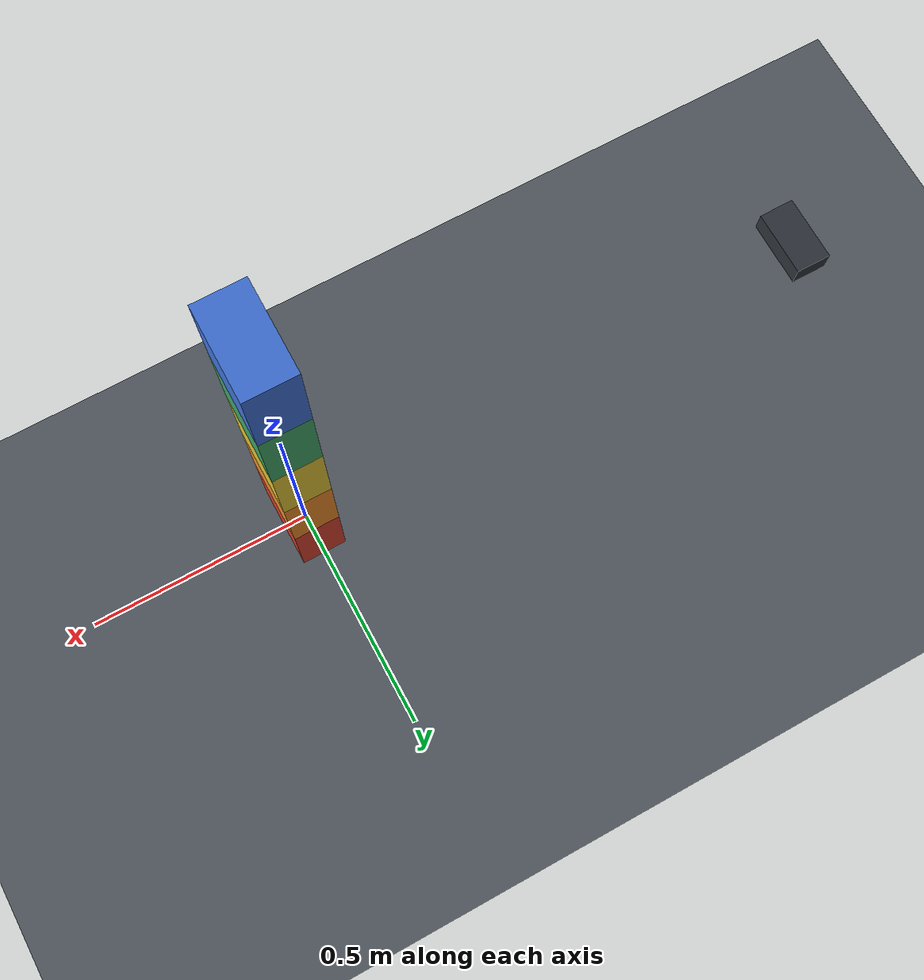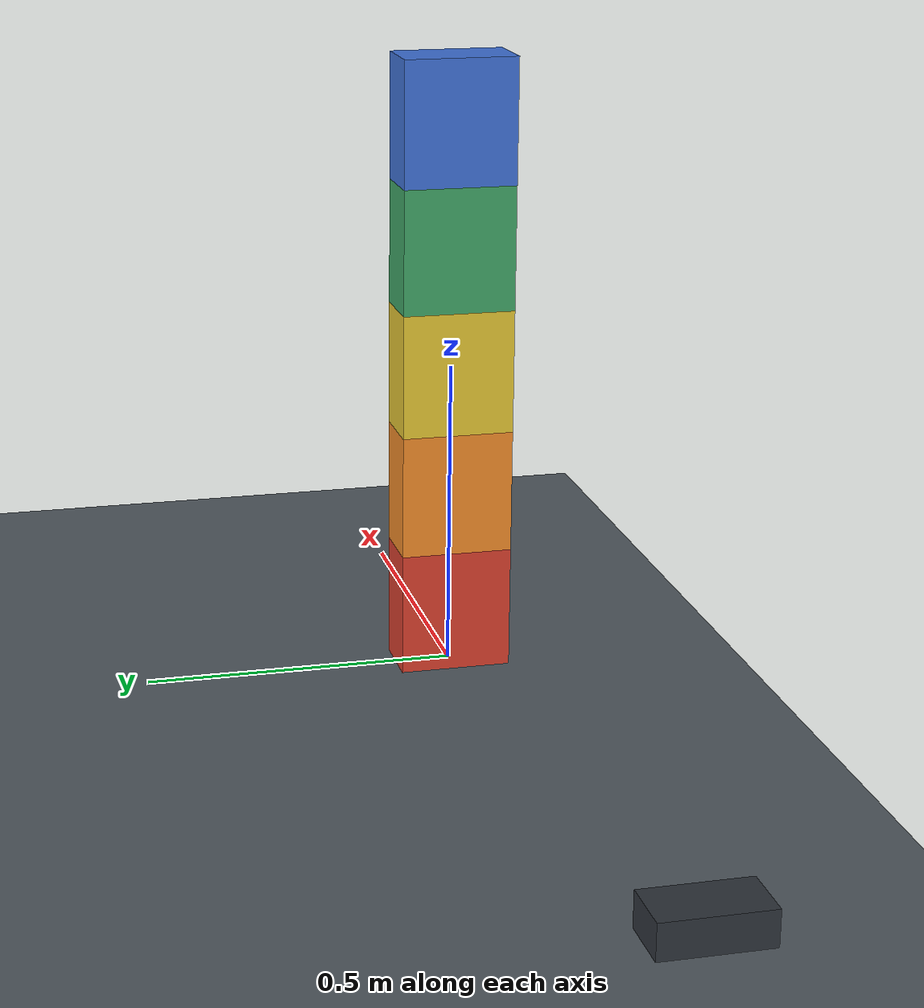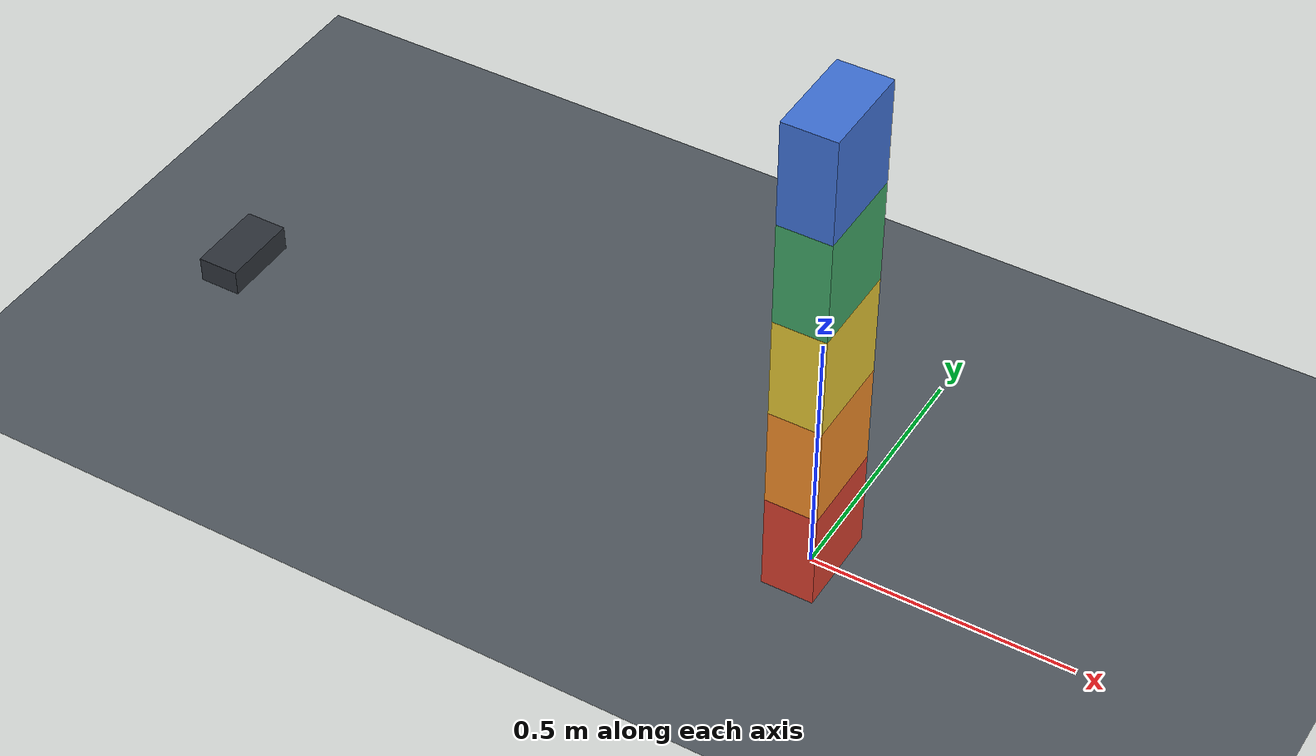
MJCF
<mujoco model="five_block_stack">
  <compiler angle="radian"/>
  <option timestep="0.002" gravity="0 0 -9.81" integrator="implicitfast" solver="Newton" iterations="80" cone="elliptic"/>

  <visual>
    <global azimuth="135" elevation="-20"/>
    <headlight ambient="0.35 0.35 0.35" diffuse="0.7 0.7 0.7" specular="0.2 0.2 0.2"/>
  </visual>

  <worldbody>
    <light name="overhead" pos="-2 -3 4" dir="0.4 0.5 -1" directional="true"/>
    <camera name="overview" pos="2.8 -3.5 2.0" xyaxes="0.781 0.625 0 -0.251 0.314 0.916"/>

    <geom name="floor" type="plane" pos="0 0 0" size="4 4 0.1" priority="1" friction="2.0 0.005 0.0001" solref="0.008 1" solimp="0.95 0.99 0.001" rgba="0.32 0.35 0.38 1"/>

    <body name="block1" pos="0 0 0.10">
      <freejoint name="block1_free"/>
      <geom name="block1_geom" type="box" size="0.05 0.09 0.10" mass="0.5" friction="1.0 0.005 0.0001" solref="0.008 1" solimp="0.95 0.99 0.001" rgba="0.85 0.25 0.18 1"/>
    </body>

    <body name="block2" pos="0 0 0.30">
      <freejoint name="block2_free"/>
      <geom name="block2_geom" type="box" size="0.05 0.09 0.10" mass="0.5" friction="1.0 0.005 0.0001" solref="0.008 1" solimp="0.95 0.99 0.001" rgba="0.95 0.55 0.16 1"/>
    </body>

    <body name="block3" pos="0 0 0.50">
      <freejoint name="block3_free"/>
      <geom name="block3_geom" type="box" size="0.05 0.09 0.10" mass="0.5" friction="1.0 0.005 0.0001" solref="0.008 1" solimp="0.95 0.99 0.001" rgba="0.90 0.78 0.20 1"/>
    </body>

    <body name="block4" pos="0 0 0.70">
      <freejoint name="block4_free"/>
      <geom name="block4_geom" type="box" size="0.05 0.09 0.10" mass="0.5" friction="1.0 0.005 0.0001" solref="0.008 1" solimp="0.95 0.99 0.001" rgba="0.25 0.65 0.40 1"/>
    </body>

    <body name="block5" pos="0 0 0.90">
      <freejoint name="block5_free"/>
      <geom name="block5_geom" type="box" size="0.05 0.09 0.10" mass="0.5" friction="1.0 0.005 0.0001" solref="0.008 1" solimp="0.95 0.99 0.001" rgba="0.25 0.45 0.85 1"/>
    </body>

    <!-- The initial gap lets the stack settle before the pusher arrives. -->
    <!-- Its striking face lies entirely below the initial block1/block2 interface. -->
    <body name="pusher" pos="-1.20 0 0.17">
      <joint name="pusher_slide" type="slide" axis="1 0 0" limited="true" range="0 1.50" damping="2" armature="0.01" solreflimit="0.005 1"/>
      <geom name="pusher_geom" type="box" size="0.04 0.075 0.025" mass="3" priority="2" friction="0.1 0.005 0.0001" solref="0.008 1" solimp="0.95 0.99 0.001" rgba="0.18 0.20 0.23 1"/>
    </body>
  </worldbody>

  <actuator>
    <velocity name="push" joint="pusher_slide" kv="250" ctrllimited="true" ctrlrange="0 2" forcelimited="true" forcerange="-80 80"/>
  </actuator>

  <keyframe>
    <key name="start" ctrl="1.5"/>
  </keyframe>
</mujoco>
